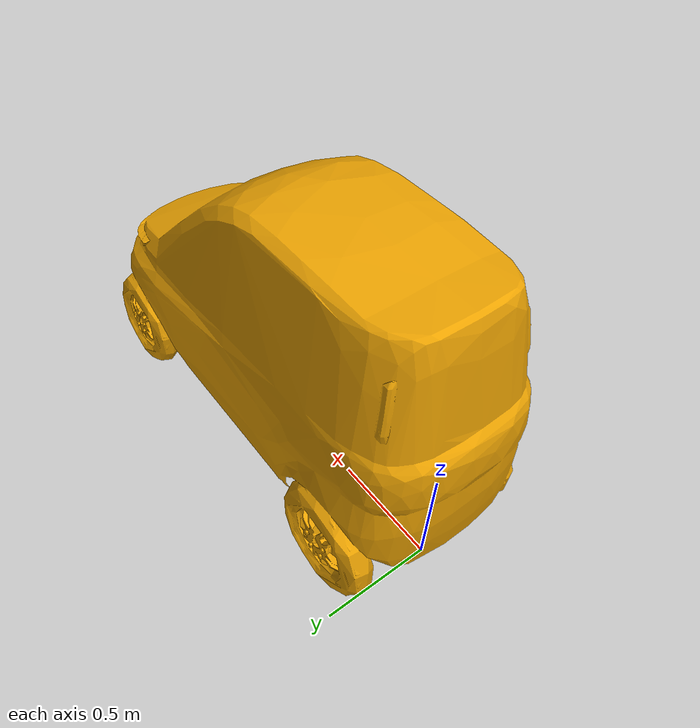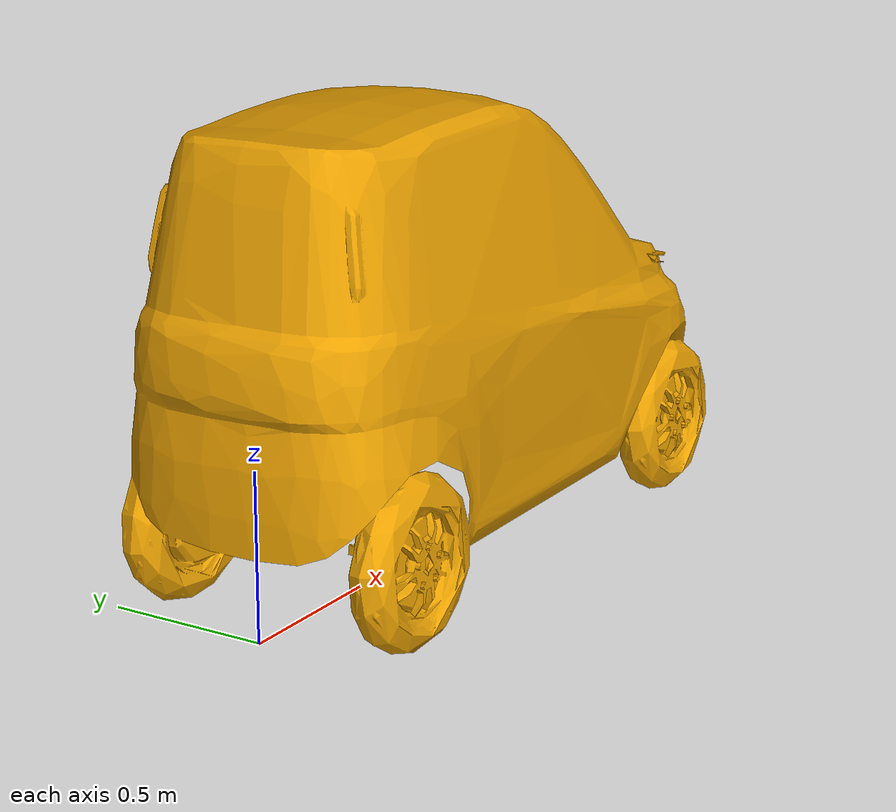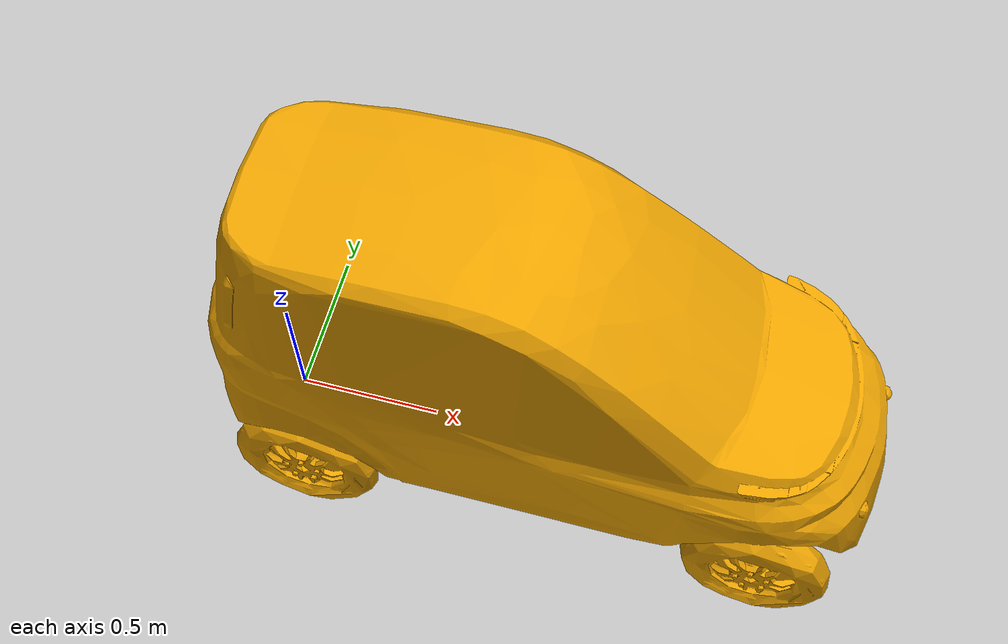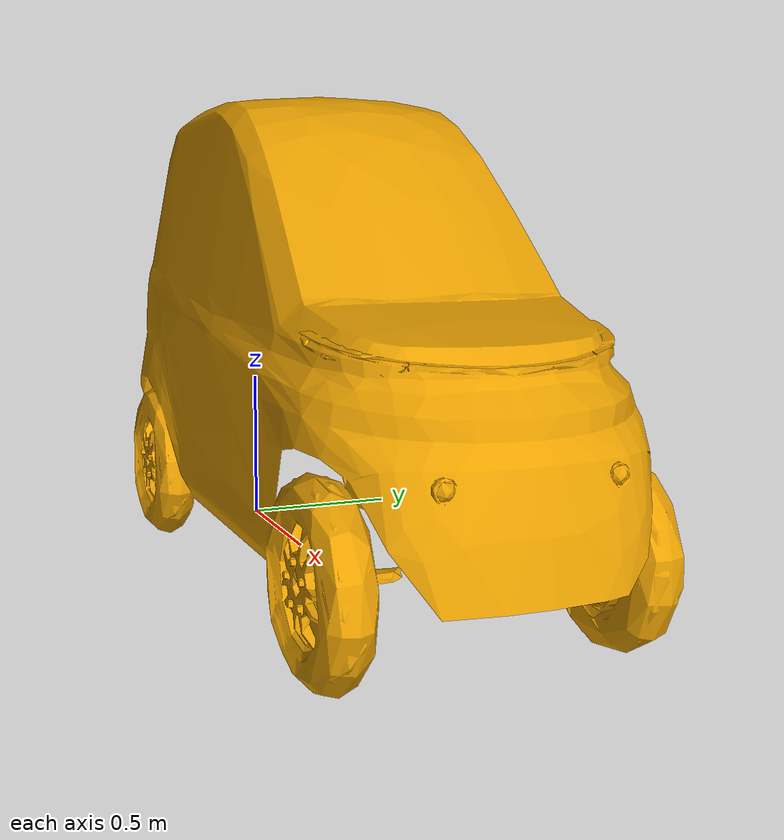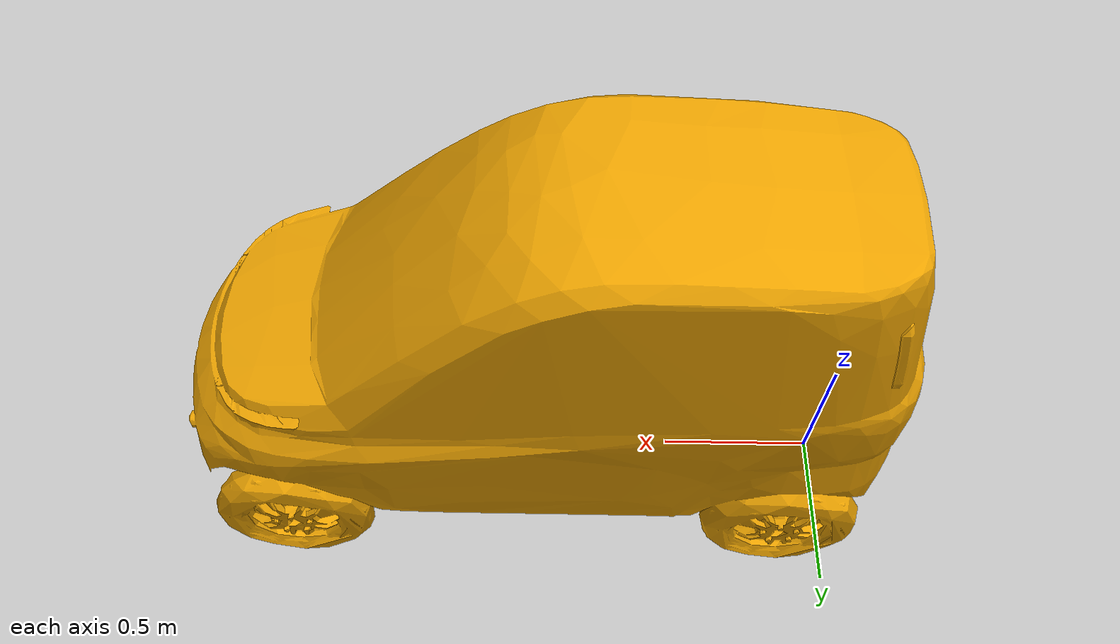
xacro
<?xml version="1.0"?>
<robot xmlns:xacro="http://ros.org/wiki/xacro">
  <!-- load parameter -->
  <xacro:property name="vehicle_info" value="${xacro.load_yaml('$(find verve_m2_vehicle_description)/config/vehicle_info.param.yaml')}"/>

  <link name="base_link">
    <visual>
      <origin xyz="1.7289 0 -0.02" rpy="0 0 0"/>
      <geometry>
        <mesh filename="package://verve_m2_vehicle_description/mesh/m2_body.stl" scale="1 1 1"/>
      </geometry>
    </visual>
  </link>
</robot>
